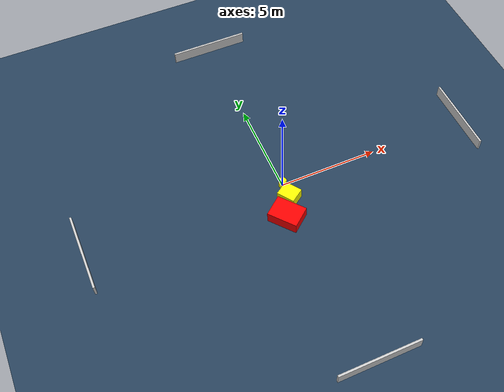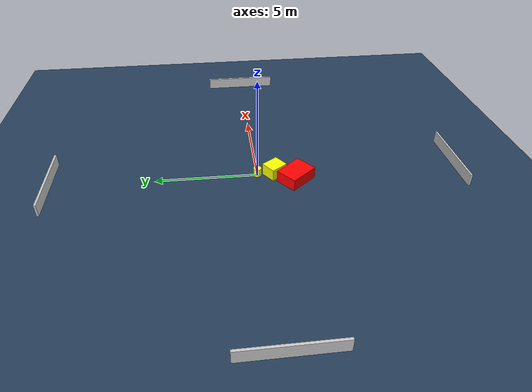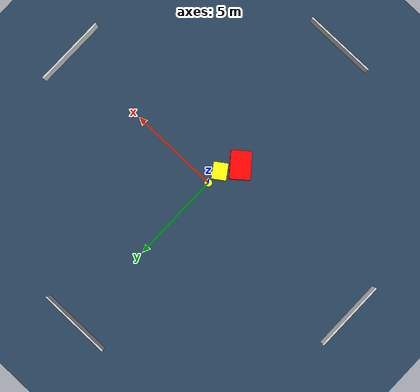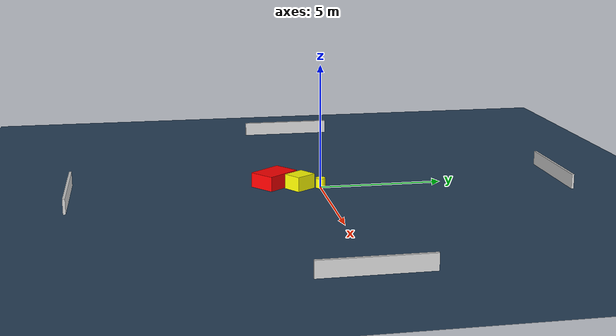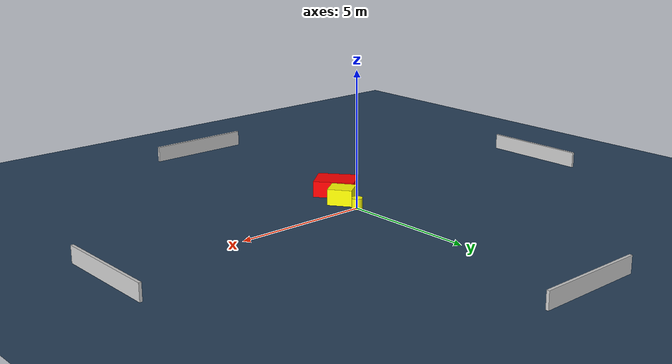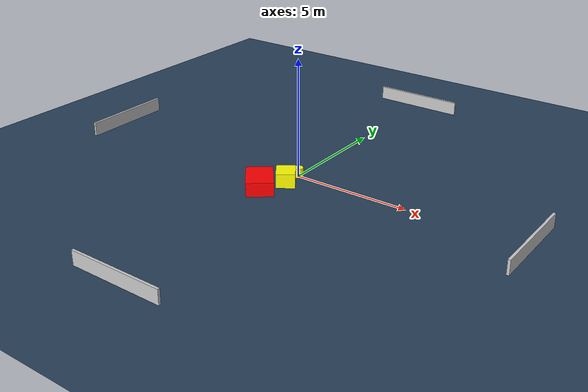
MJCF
<?xml version="1.0" ?>
<mujoco model="generated_environment">
  <option timestep="0.01" integrator="RK4" cone="elliptic"/>
  <default>
    <geom density="1"/>
  </default>
  <asset>
    <texture builtin="gradient" height="3072" name="skybox" rgb1="0.3 0.5 0.7" rgb2="0 0 0" type="skybox" width="512"/>
    <texture builtin="checker" height="300" name="groundplane" rgb1="0.2 0.3 0.4" rgb2="0.1 0.2 0.3" type="2d" width="300"/>
    <material name="groundplane" reflectance="0.2" texrepeat="5 5" texture="groundplane"/>
  </asset>
  <worldbody>
    <light dir="0 0 -1" directional="true" pos="0 0 1.5"/>
    <geom condim="3" friction="0.5 0.005 0.001" material="groundplane" name="floor" pos="0 0 0" size="0 0 0.05" type="plane"/>
    <body name="walls">
      <geom name="wall_1" condim="4" pos="-10.0 0.0 0.3" rgba="0.800000011920929 0.800000011920929 0.800000011920929 1.0" size="0.05 2.0 0.3" type="box"/>
      <geom name="wall_2" condim="4" pos="10.0 0.0 0.3" rgba="0.800000011920929 0.800000011920929 0.800000011920929 1.0" size="0.05 2.0 0.3" type="box"/>
      <geom name="wall_3" condim="4" pos="0.0 -10.0 0.3" rgba="0.800000011920929 0.800000011920929 0.800000011920929 1.0" size="2.0 0.05 0.3" type="box"/>
      <geom name="wall_4" condim="4" pos="0.0 10.0 0.3" rgba="0.800000011920929 0.800000011920929 0.800000011920929 1.0" size="2.0 0.05 0.3" type="box"/>
    </body>
    <body name="robot">
      <joint name="joint_x" type="slide" pos="0 0 0" axis="1 0 0"/>
      <joint name="joint_y" type="slide" pos="0 0 0" axis="0 1 0"/>
      <geom name="robot" type="cylinder" pos="0.0 0.0 0.2" size="0.2 0.2 0.0" mass="5.0" friction="1.0 0.005 0.0001" condim="4" rgba="1.0 1.0 0.0 1.0"/>
    </body>
    <body name="obstacle_1_movable">
      <geom name="obstacle_1_movable" condim="4" pos="-0.020405936789907465 -0.8447963508219604 0.3" euler="0 0 304.93932634654067" friction="0.0 0.005 0.001" rgba="1.0 1.0 0.0 1.0" size="0.45103326672196775 0.3897975001637468 0.3" type="box" mass="0.1"/>
      <joint type="free"/>
    </body>
    <body name="obstacle_2_static">
      <geom name="obstacle_2_static" condim="4" pos="-0.5843966024312498 -1.815405062459268 0.3" euler="0 0 129.20208051123447" friction="0.0 0.005 0.001" rgba="1.0 0.0 0.0 1.0" size="0.7578146261016052 0.5572643453779504 0.3" type="box"/>
    </body>
  </worldbody>
  <actuator>
    <motor name="actuator_x" joint="joint_x" gear="1" ctrlrange="-1 1"/>
    <motor name="actuator_y" joint="joint_y" gear="1" ctrlrange="-1 1"/>
  </actuator>
</mujoco>
